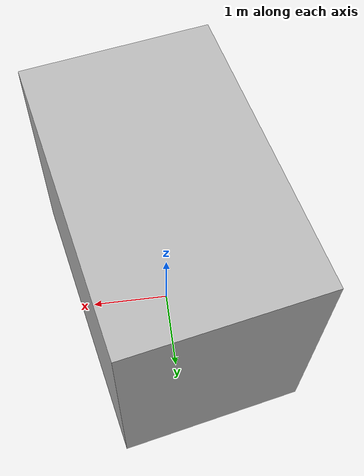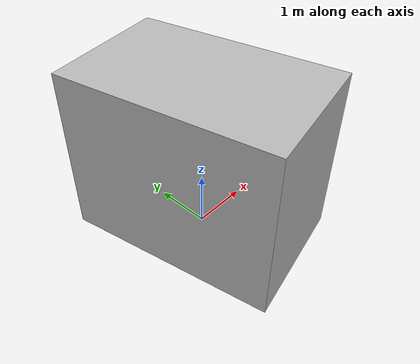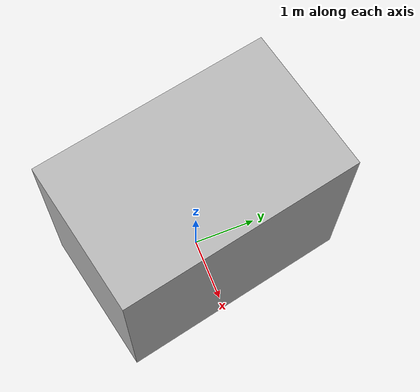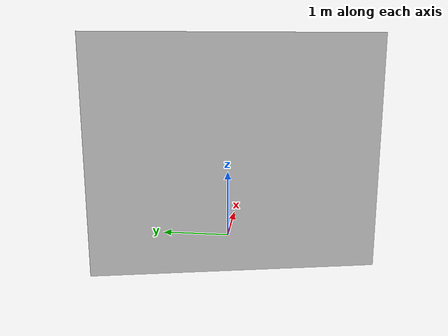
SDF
<?xml version="1.0" ?>
<sdf version="1.7">
  <model name="building_5699_actual_a_capela">
    <static>true</static>
    <link name="building_link">
      <visual name="building_visual">
        <geometry>
          <mesh>
            <uri>model://building_5699_actual_a_capela/meshes/construction_5699_actual_A_Capela_h3m.obj</uri>
          </mesh>
        </geometry>
      </visual>
    <collision name="building_collision">
      <geometry>
        <mesh>
          <uri>model://building_5699_actual_a_capela/meshes/construction_5699_actual_A_Capela_h3m.obj</uri>
        </mesh>
      </geometry>
    </collision>
    </link>
  </model>
</sdf>
